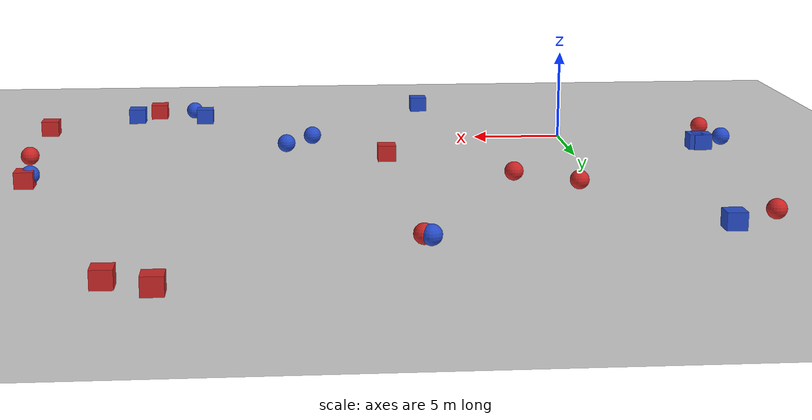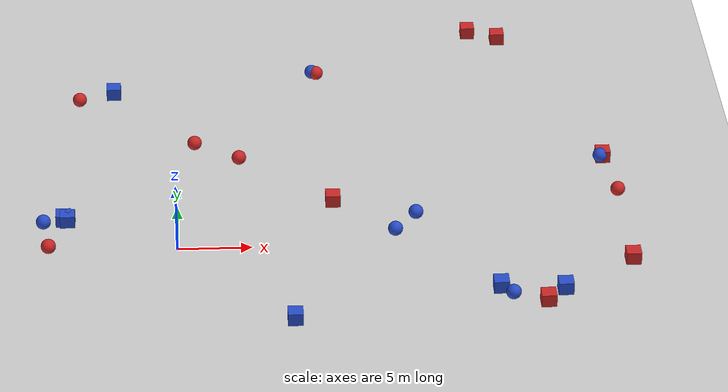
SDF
<sdf version="1.6">
 <world name="default">
  <light name="sun" type="directional">
   <pose>0 0 10 0 -0 0</pose>
   <diffuse>0.8 0.8 0.8 1</diffuse>
   <specular>0.1 0.1 0.1 1</specular>
   <attenuation>
    <range>1000</range>
    <constant>0.9</constant>
    <linear>0.01</linear>
    <quadratic>0.001</quadratic>
   </attenuation>
   <direction>-0.5 0.5 -1</direction>
  </light>
  <model name="ground_plane">
   <static>1</static>
   <link name="link">
    <collision name="collision">
     <geometry><plane><normal>0 0 1</normal><size>100 100</size></plane></geometry>
     <surface><friction><ode><mu>100</mu><mu2>50</mu2></ode></friction></surface>
    </collision>
    <visual name="visual">
     <cast_shadows>0</cast_shadows>
     <geometry><plane><normal>0 0 1</normal><size>100 100</size></plane></geometry>
     <material>
      <script><uri>file://media/materials/scripts/gazebo.material</uri><name>Gazebo/Grey</name></script>
     </material>
    </visual>
   </link>
  </model>
  <model name="unit_box_red_6">
   <pose>23.7043884373 26.1890886704 0.329741 0 -0 0</pose>
   <link name="link">
    <inertial>
     <mass>1</mass>
     <inertia>
      <ixx>0.166667</ixx>
      <ixy>0</ixy>
      <ixz>0</ixz>
      <iyy>0.166667</iyy>
      <iyz>0</iyz>
      <izz>0.166667</izz>
     </inertia>
    </inertial>
    <collision name="collision"><geometry><box><size>1 1 0.999999</size></box></geometry></collision>
    <visual name="visual">
     <geometry><box><size>1 1 0.999999</size></box></geometry>
     <material>
      <script><name>Gazebo/Red</name><uri>file://media/materials/scripts/gazebo.material</uri></script>
     </material>
    </visual>
   </link>
  </model>
  <model name="unit_box_red_5">
   <pose>21.5811210864 27.1614395271 0.329741 0 -0 0</pose>
   <link name="link">
    <inertial>
     <mass>1</mass>
     <inertia>
      <ixx>0.166667</ixx>
      <ixy>0</ixy>
      <ixz>0</ixz>
      <iyy>0.166667</iyy>
      <iyz>0</iyz>
      <izz>0.166667</izz>
     </inertia>
    </inertial>
    <collision name="collision"><geometry><box><size>1 1 0.999999</size></box></geometry></collision>
    <visual name="visual">
     <geometry><box><size>1 1 0.999999</size></box></geometry>
     <material>
      <script><name>Gazebo/Red</name><uri>file://media/materials/scripts/gazebo.material</uri></script>
     </material>
    </visual>
   </link>
  </model>
  <model name="unit_box_red_4">
   <pose>24.0780033157 -7.08340858031 0.329741 0 -0 0</pose>
   <link name="link">
    <inertial>
     <mass>1</mass>
     <inertia>
      <ixx>0.166667</ixx>
      <ixy>0</ixy>
      <ixz>0</ixz>
      <iyy>0.166667</iyy>
      <iyz>0</iyz>
      <izz>0.166667</izz>
     </inertia>
    </inertial>
    <collision name="collision"><geometry><box><size>1 1 0.999999</size></box></geometry></collision>
    <visual name="visual">
     <geometry><box><size>1 1 0.999999</size></box></geometry>
     <material>
      <script><name>Gazebo/Red</name><uri>file://media/materials/scripts/gazebo.material</uri></script>
     </material>
    </visual>
   </link>
  </model>
  <model name="unit_box_red_3">
   <pose>30.1840904758 -2.570052079 0.329741 0 -0 0</pose>
   <link name="link">
    <inertial>
     <mass>1</mass>
     <inertia>
      <ixx>0.166667</ixx>
      <ixy>0</ixy>
      <ixz>0</ixz>
      <iyy>0.166667</iyy>
      <iyz>0</iyz>
      <izz>0.166667</izz>
     </inertia>
    </inertial>
    <collision name="collision"><geometry><box><size>1 1 0.999999</size></box></geometry></collision>
    <visual name="visual">
     <geometry><box><size>1 1 0.999999</size></box></geometry>
     <material>
      <script><name>Gazebo/Red</name><uri>file://media/materials/scripts/gazebo.material</uri></script>
     </material>
    </visual>
   </link>
  </model>
  <model name="unit_box_red_2">
   <pose>29.6249939405 9.81669386108 0.329741 0 -0 0</pose>
   <link name="link">
    <inertial>
     <mass>1</mass>
     <inertia>
      <ixx>0.166667</ixx>
      <ixy>0</ixy>
      <ixz>0</ixz>
      <iyy>0.166667</iyy>
      <iyz>0</iyz>
      <izz>0.166667</izz>
     </inertia>
    </inertial>
    <collision name="collision"><geometry><box><size>1 1 0.999999</size></box></geometry></collision>
    <visual name="visual">
     <geometry><box><size>1 1 0.999999</size></box></geometry>
     <material>
      <script><name>Gazebo/Red</name><uri>file://media/materials/scripts/gazebo.material</uri></script>
     </material>
    </visual>
   </link>
  </model>
  <model name="unit_box_red_1">
   <pose>10.5930635003 5.11348828447 0.329741 0 -0 0</pose>
   <link name="link">
    <inertial>
     <mass>1</mass>
     <inertia>
      <ixx>0.166667</ixx>
      <ixy>0</ixy>
      <ixz>0</ixz>
      <iyy>0.166667</iyy>
      <iyz>0</iyz>
      <izz>0.166667</izz>
     </inertia>
    </inertial>
    <collision name="collision"><geometry><box><size>1 1 0.999999</size></box></geometry></collision>
    <visual name="visual">
     <geometry><box><size>1 1 0.999999</size></box></geometry>
     <material>
      <script><name>Gazebo/Red</name><uri>file://media/materials/scripts/gazebo.material</uri></script>
     </material>
    </visual>
   </link>
  </model>
  <model name="unit_sphere_red_6">
   <pose>-8.55900941034 0.0277730856601 0.5 0 -0 0</pose>
   <link name="link">
    <inertial>
     <mass>1</mass>
     <inertia><ixx>0.1</ixx><ixy>0</ixy><ixz>0</ixz><iyy>0.1</iyy><iyz>0</iyz><izz>0.1</izz></inertia>
    </inertial>
    <collision name="collision"><geometry><sphere><radius>0.5</radius></sphere></geometry></collision>
    <visual name="visual">
     <geometry><sphere><radius>0.5</radius></sphere></geometry>
     <material>
      <script><name>Gazebo/Red</name><uri>file://media/materials/scripts/gazebo.material</uri></script>
     </material>
    </visual>
   </link>
  </model>
  <model name="unit_sphere_red_5">
   <pose>30.11865883 5.23882518668 0.5 0 -0 0</pose>
   <link name="link">
    <inertial>
     <mass>1</mass>
     <inertia><ixx>0.1</ixx><ixy>0</ixy><ixz>0</ixz><iyy>0.1</iyy><iyz>0</iyz><izz>0.1</izz></inertia>
    </inertial>
    <collision name="collision"><geometry><sphere><radius>0.5</radius></sphere></geometry></collision>
    <visual name="visual">
     <geometry><sphere><radius>0.5</radius></sphere></geometry>
     <material>
      <script><name>Gazebo/Red</name><uri>file://media/materials/scripts/gazebo.material</uri></script>
     </material>
    </visual>
   </link>
  </model>
  <model name="unit_sphere_red_4">
   <pose>1.21818911526 12.3409988946 0.5 0 -0 0</pose>
   <link name="link">
    <inertial>
     <mass>1</mass>
     <inertia><ixx>0.1</ixx><ixy>0</ixy><ixz>0</ixz><iyy>0.1</iyy><iyz>0</iyz><izz>0.1</izz></inertia>
    </inertial>
    <collision name="collision"><geometry><sphere><radius>0.5</radius></sphere></geometry></collision>
    <visual name="visual">
     <geometry><sphere><radius>0.5</radius></sphere></geometry>
     <material>
      <script><name>Gazebo/Red</name><uri>file://media/materials/scripts/gazebo.material</uri></script>
     </material>
    </visual>
   </link>
  </model>
  <model name="unit_sphere_red_3">
   <pose>4.2861610157 10.3346392589 0.5 0 -0 0</pose>
   <link name="link">
    <inertial>
     <mass>1</mass>
     <inertia><ixx>0.1</ixx><ixy>0</ixy><ixz>0</ixz><iyy>0.1</iyy><iyz>0</iyz><izz>0.1</izz></inertia>
    </inertial>
    <collision name="collision"><geometry><sphere><radius>0.5</radius></sphere></geometry></collision>
    <visual name="visual">
     <geometry><sphere><radius>0.5</radius></sphere></geometry>
     <material>
      <script><name>Gazebo/Red</name><uri>file://media/materials/scripts/gazebo.material</uri></script>
     </material>
    </visual>
   </link>
  </model>
  <model name="unit_sphere_red_2">
   <pose>-6.96353425964 18.4458936047 0.5 0 -0 0</pose>
   <link name="link">
    <inertial>
     <mass>1</mass>
     <inertia><ixx>0.1</ixx><ixy>0</ixy><ixz>0</ixz><iyy>0.1</iyy><iyz>0</iyz><izz>0.1</izz></inertia>
    </inertial>
    <collision name="collision"><geometry><sphere><radius>0.5</radius></sphere></geometry></collision>
    <visual name="visual">
     <geometry><sphere><radius>0.5</radius></sphere></geometry>
     <material>
      <script><name>Gazebo/Red</name><uri>file://media/materials/scripts/gazebo.material</uri></script>
     </material>
    </visual>
   </link>
  </model>
  <model name="unit_sphere_red_1">
   <pose>10.0880726514 21.3912585527 0.5 0 -0 0</pose>
   <link name="link">
    <inertial>
     <mass>1</mass>
     <inertia><ixx>0.1</ixx><ixy>0</ixy><ixz>0</ixz><iyy>0.1</iyy><iyz>0</iyz><izz>0.1</izz></inertia>
    </inertial>
    <collision name="collision"><geometry><sphere><radius>0.5</radius></sphere></geometry></collision>
    <visual name="visual">
     <geometry><sphere><radius>0.5</radius></sphere></geometry>
     <material>
      <script><name>Gazebo/Red</name><uri>file://media/materials/scripts/gazebo.material</uri></script>
     </material>
    </visual>
   </link>
  </model>
  <model name="unit_box_blue_6">
   <pose>-4.55590926908 19.6269625649 0.329741 0 -0 0</pose>
   <link name="link">
    <inertial>
     <mass>1</mass>
     <inertia>
      <ixx>0.166667</ixx>
      <ixy>0</ixy>
      <ixz>0</ixz>
      <iyy>0.166667</iyy>
      <iyz>0</iyz>
      <izz>0.166667</izz>
     </inertia>
    </inertial>
    <collision name="collision"><geometry><box><size>1 1 0.999999</size></box></geometry></collision>
    <visual name="visual">
     <geometry><box><size>1 1 0.999999</size></box></geometry>
     <material>
      <script><name>Gazebo/Blue</name><uri>file://media/materials/scripts/gazebo.material</uri></script>
     </material>
    </visual>
   </link>
  </model>
  <model name="unit_box_blue_5">
   <pose>7.59200662443 -8.41094712896 0.329741 0 -0 0</pose>
   <link name="link">
    <inertial>
     <mass>1</mass>
     <inertia>
      <ixx>0.166667</ixx>
      <ixy>0</ixy>
      <ixz>0</ixz>
      <iyy>0.166667</iyy>
      <iyz>0</iyz>
      <izz>0.166667</izz>
     </inertia>
    </inertial>
    <collision name="collision"><geometry><box><size>1 1 0.999999</size></box></geometry></collision>
    <visual name="visual">
     <geometry><box><size>1 1 0.999999</size></box></geometry>
     <material>
      <script><name>Gazebo/Blue</name><uri>file://media/materials/scripts/gazebo.material</uri></script>
     </material>
    </visual>
   </link>
  </model>
  <model name="unit_box_blue_4">
   <pose>-7.68147980505 3.51218974776 0.329741 0 -0 0</pose>
   <link name="link">
    <inertial>
     <mass>1</mass>
     <inertia>
      <ixx>0.166667</ixx>
      <ixy>0</ixy>
      <ixz>0</ixz>
      <iyy>0.166667</iyy>
      <iyz>0</iyz>
      <izz>0.166667</izz>
     </inertia>
    </inertial>
    <collision name="collision"><geometry><box><size>1 1 0.999999</size></box></geometry></collision>
    <visual name="visual">
     <geometry><box><size>1 1 0.999999</size></box></geometry>
     <material>
      <script><name>Gazebo/Blue</name><uri>file://media/materials/scripts/gazebo.material</uri></script>
     </material>
    </visual>
   </link>
  </model>
  <model name="unit_box_blue_3">
   <pose>-7.3988758093 3.42007391419 0.329741 0 -0 0</pose>
   <link name="link">
    <inertial>
     <mass>1</mass>
     <inertia>
      <ixx>0.166667</ixx>
      <ixy>0</ixy>
      <ixz>0</ixz>
      <iyy>0.166667</iyy>
      <iyz>0</iyz>
      <izz>0.166667</izz>
     </inertia>
    </inertial>
    <collision name="collision"><geometry><box><size>1 1 0.999999</size></box></geometry></collision>
    <visual name="visual">
     <geometry><box><size>1 1 0.999999</size></box></geometry>
     <material>
      <script><name>Gazebo/Blue</name><uri>file://media/materials/scripts/gazebo.material</uri></script>
     </material>
    </visual>
   </link>
  </model>
  <model name="unit_box_blue_2">
   <pose>21.1464267505 -5.43690320097 0.329741 0 -0 0</pose>
   <link name="link">
    <inertial>
     <mass>1</mass>
     <inertia>
      <ixx>0.166667</ixx>
      <ixy>0</ixy>
      <ixz>0</ixz>
      <iyy>0.166667</iyy>
      <iyz>0</iyz>
      <izz>0.166667</izz>
     </inertia>
    </inertial>
    <collision name="collision"><geometry><box><size>1 1 0.999999</size></box></geometry></collision>
    <visual name="visual">
     <geometry><box><size>1 1 0.999999</size></box></geometry>
     <material>
      <script><name>Gazebo/Blue</name><uri>file://media/materials/scripts/gazebo.material</uri></script>
     </material>
    </visual>
   </link>
  </model>
  <model name="unit_box_blue_1">
   <pose>25.3362046854 -5.80167836518 0.329741 0 -0 0</pose>
   <link name="link">
    <inertial>
     <mass>1</mass>
     <inertia>
      <ixx>0.166667</ixx>
      <ixy>0</ixy>
      <ixz>0</ixz>
      <iyy>0.166667</iyy>
      <iyz>0</iyz>
      <izz>0.166667</izz>
     </inertia>
    </inertial>
    <collision name="collision"><geometry><box><size>1 1 0.999999</size></box></geometry></collision>
    <visual name="visual">
     <geometry><box><size>1 1 0.999999</size></box></geometry>
     <material>
      <script><name>Gazebo/Blue</name><uri>file://media/materials/scripts/gazebo.material</uri></script>
     </material>
    </visual>
   </link>
  </model>
  <model name="unit_sphere_blue_6">
   <pose>29.4065437701 9.5021707477 0.5 0 -0 0</pose>
   <link name="link">
    <inertial>
     <mass>1</mass>
     <inertia><ixx>0.1</ixx><ixy>0</ixy><ixz>0</ixz><iyy>0.1</iyy><iyz>0</iyz><izz>0.1</izz></inertia>
    </inertial>
    <collision name="collision"><geometry><sphere><radius>0.5</radius></sphere></geometry></collision>
    <visual name="visual">
     <geometry><sphere><radius>0.5</radius></sphere></geometry>
     <material>
      <script><name>Gazebo/Blue</name><uri>file://media/materials/scripts/gazebo.material</uri></script>
     </material>
    </visual>
   </link>
  </model>
  <model name="unit_sphere_blue_5">
   <pose>9.77100868752 21.5811170562 0.5 0 -0 0</pose>
   <link name="link">
    <inertial>
     <mass>1</mass>
     <inertia><ixx>0.1</ixx><ixy>0</ixy><ixz>0</ixz><iyy>0.1</iyy><iyz>0</iyz><izz>0.1</izz></inertia>
    </inertial>
    <collision name="collision"><geometry><sphere><radius>0.5</radius></sphere></geometry></collision>
    <visual name="visual">
     <geometry><sphere><radius>0.5</radius></sphere></geometry>
     <material>
      <script><name>Gazebo/Blue</name><uri>file://media/materials/scripts/gazebo.material</uri></script>
     </material>
    </visual>
   </link>
  </model>
  <model name="unit_sphere_blue_4">
   <pose>16.1330509446 3.05381605224 0.5 0 -0 0</pose>
   <link name="link">
    <inertial>
     <mass>1</mass>
     <inertia><ixx>0.1</ixx><ixy>0</ixy><ixz>0</ixz><iyy>0.1</iyy><iyz>0</iyz><izz>0.1</izz></inertia>
    </inertial>
    <collision name="collision"><geometry><sphere><radius>0.5</radius></sphere></geometry></collision>
    <visual name="visual">
     <geometry><sphere><radius>0.5</radius></sphere></geometry>
     <material>
      <script><name>Gazebo/Blue</name><uri>file://media/materials/scripts/gazebo.material</uri></script>
     </material>
    </visual>
   </link>
  </model>
  <model name="unit_sphere_blue_3">
   <pose>-8.99819093419 2.93251014017 0.5 0 -0 0</pose>
   <link name="link">
    <inertial>
     <mass>1</mass>
     <inertia><ixx>0.1</ixx><ixy>0</ixy><ixz>0</ixz><iyy>0.1</iyy><iyz>0</iyz><izz>0.1</izz></inertia>
    </inertial>
    <collision name="collision"><geometry><sphere><radius>0.5</radius></sphere></geometry></collision>
    <visual name="visual">
     <geometry><sphere><radius>0.5</radius></sphere></geometry>
     <material>
      <script><name>Gazebo/Blue</name><uri>file://media/materials/scripts/gazebo.material</uri></script>
     </material>
    </visual>
   </link>
  </model>
  <model name="unit_sphere_blue_2">
   <pose>21.8554160151 -6.53653483986 0.5 0 -0 0</pose>
   <link name="link">
    <inertial>
     <mass>1</mass>
     <inertia><ixx>0.1</ixx><ixy>0</ixy><ixz>0</ixz><iyy>0.1</iyy><iyz>0</iyz><izz>0.1</izz></inertia>
    </inertial>
    <collision name="collision"><geometry><sphere><radius>0.5</radius></sphere></geometry></collision>
    <visual name="visual">
     <geometry><sphere><radius>0.5</radius></sphere></geometry>
     <material>
      <script><name>Gazebo/Blue</name><uri>file://media/materials/scripts/gazebo.material</uri></script>
     </material>
    </visual>
   </link>
  </model>
  <model name="unit_sphere_blue_1">
   <pose>14.6269387533 1.10430318408 0.5 0 -0 0</pose>
   <link name="link">
    <inertial>
     <mass>1</mass>
     <inertia><ixx>0.1</ixx><ixy>0</ixy><ixz>0</ixz><iyy>0.1</iyy><iyz>0</iyz><izz>0.1</izz></inertia>
    </inertial>
    <collision name="collision"><geometry><sphere><radius>0.5</radius></sphere></geometry></collision>
    <visual name="visual">
     <geometry><sphere><radius>0.5</radius></sphere></geometry>
     <material>
      <script><name>Gazebo/Blue</name><uri>file://media/materials/scripts/gazebo.material</uri></script>
     </material>
    </visual>
   </link>
  </model>
  <gravity>0 0 -9.8</gravity>
  <magnetic_field>6e-06 2.3e-05 -4.2e-05</magnetic_field>
  <atmosphere type="adiabatic"/>
  <physics default="0" name="default_physics" type="ode">
   <max_step_size>0.001</max_step_size>
   <real_time_factor>1</real_time_factor>
   <real_time_update_rate>1000</real_time_update_rate>
  </physics>
  <scene><ambient>0.4 0.4 0.4 1</ambient><background>0.7 0.7 0.7 1</background><shadows>1</shadows></scene>
  <spherical_coordinates>
   <surface_model>EARTH_WGS84</surface_model>
   <latitude_deg>0</latitude_deg>
   <longitude_deg>0</longitude_deg>
   <elevation>0</elevation>
   <heading_deg>0</heading_deg>
  </spherical_coordinates>
 </world>
</sdf>
